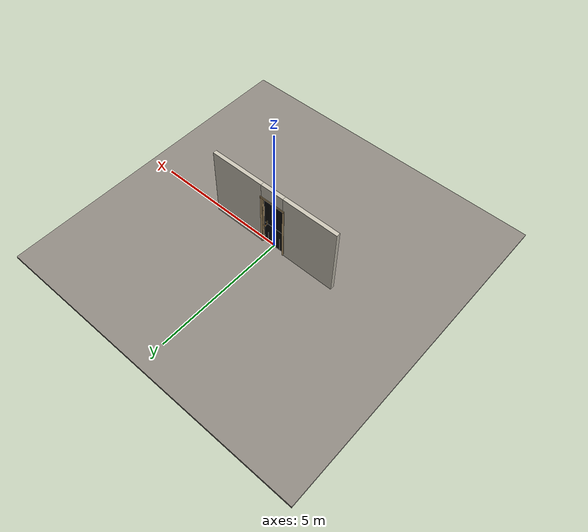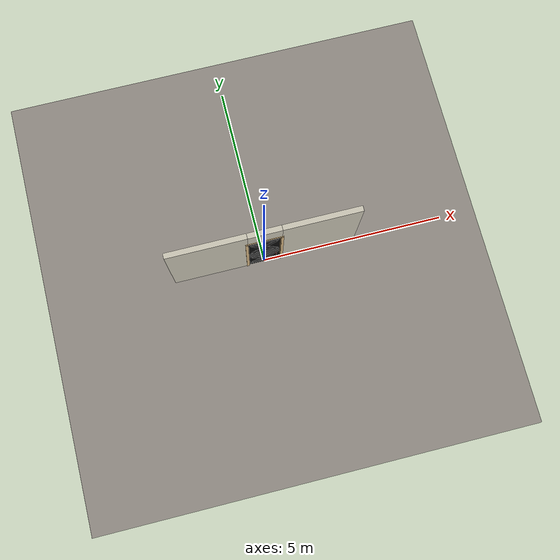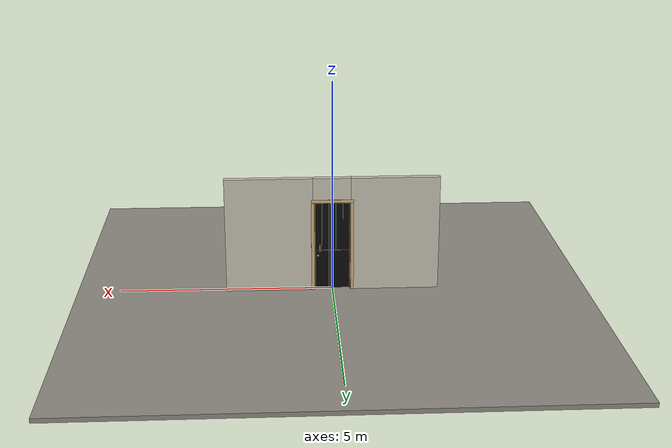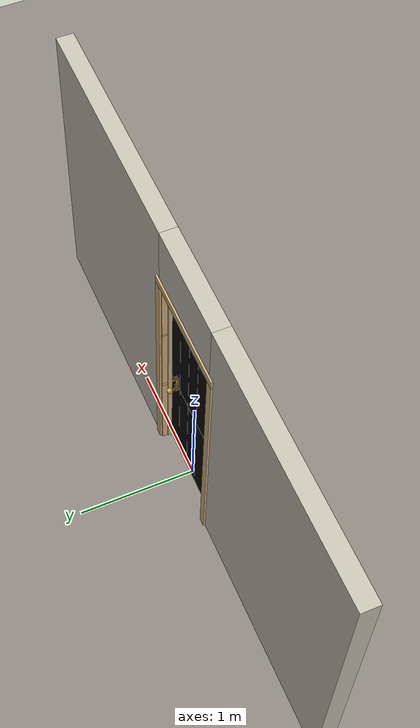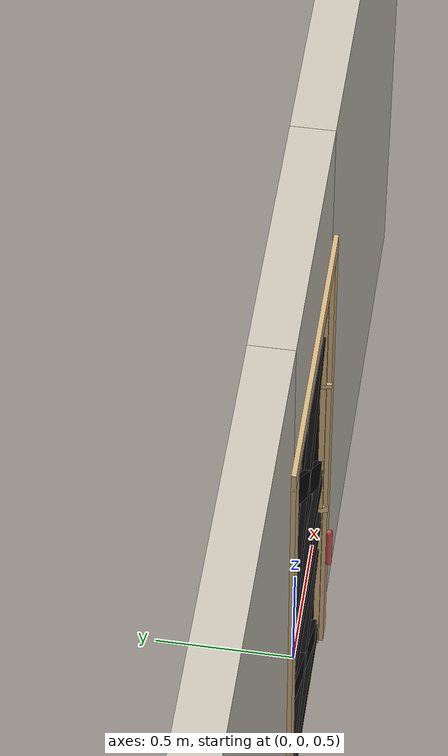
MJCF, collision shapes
<?xml version="1.0" ?>
<mujoco model="db0095_dutch_full">
  <compiler angle="radian" meshdir="../../hardware" texturedir="../../textures" autolimits="true" inertiafromgeom="false"/>
  <option timestep="0.002" integrator="implicitfast" cone="elliptic" impratio="10" noslip_iterations="3">
    <flag multiccd="enable"/>
  </option>
  <size memory="16M"/>
  <default>
    <geom condim="4" solref="0.005 1" solimp="0.95 0.99 0.001"/>
    <joint solreflimit="0.005 1" solimplimit="0.95 0.99 0.001"/>
    <tendon solreflimit="0.005 1"/>
    <equality solref="0.002 1"/>
  </default>
  <visual>
    <headlight ambient="0.4 0.4 0.4" diffuse="0.7 0.7 0.7" specular="0.2 0.2 0.2"/>
    <quality shadowsize="4096"/>
    <map znear="0.01" zfar="60"/>
  </visual>
  <asset>
    <mesh name="handleset_beb5526ad2" file="handleset_beb5526ad2.obj"/>
    <mesh name="hinge_2af0f4d6ca" file="hinge_2af0f4d6ca.obj"/>
    <mesh name="hinge_jamb_c0c0a62ada" file="hinge_jamb_c0c0a62ada.obj"/>
    <mesh name="knob_d1888f6f03" file="knob_d1888f6f03.obj"/>
    <material name="mat_floor" rgba="0.55 0.53 0.5 1" specular="0.2" shininess="0.15" reflectance="0"/>
    <material name="mat_wall" rgba="0.78 0.76 0.7 1" specular="0.2" shininess="0.1" reflectance="0"/>
    <material name="mat_leaf_lower" rgba="0.04 0.04 0.04 1" specular="0.2" shininess="0.44" reflectance="0"/>
    <material name="mat_leaf_lower_brace" rgba="0.036 0.036 0.036 1" specular="0.2" shininess="0.2" reflectance="0"/>
    <material name="mat_leaf_upper" rgba="0.04 0.04 0.04 1" specular="0.2" shininess="0.44" reflectance="0"/>
    <material name="mat_leaf_upper_brace" rgba="0.036 0.036 0.036 1" specular="0.2" shininess="0.2" reflectance="0"/>
    <material name="mat_op_bronze" rgba="0.3 0.22 0.15 1" specular="0.74" shininess="0.5" reflectance="0.36"/>
    <material name="mat_op_brass" rgba="0.85 0.66 0.3 1" specular="0.8" shininess="0.75" reflectance="0.4"/>
    <material name="mat_trim" rgba="0.85 0.66 0.3 1" specular="0.8" shininess="0.75" reflectance="0.4"/>
    <material name="mat_bolt" rgba="0.85 0.66 0.3 1" specular="0.8" shininess="0.75" reflectance="0.4"/>
    <material name="mat_joinbolt" rgba="0.85 0.66 0.3 1" specular="0.8" shininess="0.75" reflectance="0.4"/>
    <material name="mat_frame" rgba="0.82 0.7 0.5 1" specular="0.2" shininess="0.45" reflectance="0"/>
    <material name="mat_hinge" rgba="0.65 0.66 0.68 1" specular="0.74" shininess="0.5" reflectance="0.36"/>
    <texture name="skybox" type="skybox" builtin="gradient" rgb1="0.6 0.7 0.85" rgb2="0.9 0.92 0.95" width="256" height="256"/>
  </asset>
  <worldbody>
    <light name="sun" pos="1.5 -2.5 4" dir="-0.3 0.5 -0.8" directional="true" diffuse="0.8 0.8 0.8" specular="0.3 0.3 0.3" castshadow="true"/>
    <light name="fill" pos="-1.5 2.5 3" dir="0.3 -0.5 -0.7" directional="true" diffuse="0.35 0.35 0.4" castshadow="false"/>
    <camera name="robot_view" pos="0 -2.607312 1.812087" xyaxes="1 0 0 0 0.26963 0.962964" fovy="52"/>
    <camera name="far_view" pos="0 2.668312 1.812087" xyaxes="-1 0 0 0 -0.26963 0.962964" fovy="52"/>
    <camera name="iso" pos="2.004737 -2.185262 2.234138" xyaxes="0.741536 0.670913 0 -0.242917 0.268487 0.932151" fovy="46"/>
    <camera name="detail_handle" pos="0.4805 -0.882 1.06" xyaxes="0.97561 0.219512 0 -0.070934 0.315262 0.94635" fovy="38"/>
    <geom name="floor" type="box" size="6 6 0.05" pos="0 0 -0.05" material="mat_floor" group="0" contype="1" conaffinity="1" friction="0.8 0.005 0.0001" density="2400"/>
    <geom name="wall_left" type="box" size="1.03525 0.0725 1.3735" pos="-1.46475 0.0305 1.3735" material="mat_wall" group="0" contype="1" conaffinity="1" friction="0.6 0.005 0.0001" density="800"/>
    <geom name="wall_right" type="box" size="1.02025 0.0725 1.3735" pos="1.47975 0.0305 1.3735" material="mat_wall" group="0" contype="1" conaffinity="1" friction="0.6 0.005 0.0001" density="800"/>
    <geom name="wall_header" type="box" size="0.4445 0.0725 0.2755" pos="0.015 0.0305 2.4715" material="mat_wall" group="0" contype="1" conaffinity="1" friction="0.6 0.005 0.0001" density="800"/>
    <geom name="jamb_hinge" type="box" size="0.0095 0.0725 1.0735" pos="-0.42 0.0305 1.0735" material="mat_frame" group="0" contype="1" conaffinity="1" friction="0.6 0.005 0.0001" density="400"/>
    <geom name="strike_840_wall_n" type="box" size="0.0245 0.047575 0.0167" pos="0.435 0.055425 0.84" material="mat_frame" group="0" contype="1" conaffinity="1" friction="0.6 0.005 0.0001" density="400"/>
    <geom name="strike_840_wall_p" type="box" size="0.0245 0.008 0.0167" pos="0.435 -0.01585 0.84" material="mat_frame" group="0" contype="1" conaffinity="1" friction="0.6 0.005 0.0001" density="400"/>
    <geom name="strike_840_ramp" type="box" size="0.0245 0.020268 0.0167" pos="0.440408 -0.034645 0.84" quat="0.985179 0 0 0.171531" material="mat_frame" group="0" contype="1" conaffinity="1" friction="0.12 0.005 0.0001" density="400"/>
    <geom name="strike_840_back" type="box" size="0.01615 0.00785 0.0167" pos="0.44335 0 0.84" material="mat_frame" group="0" contype="1" conaffinity="1" friction="0.6 0.005 0.0001" density="400"/>
    <geom name="strike_1547_wall_n" type="box" size="0.0245 0.04775 0.01" pos="0.435 0.05525 1.547" material="mat_frame" group="0" contype="1" conaffinity="1" friction="0.6 0.005 0.0001" density="400"/>
    <geom name="strike_1547_wall_p" type="box" size="0.0245 0.008 0.01" pos="0.435 -0.0155 1.547" material="mat_frame" group="0" contype="1" conaffinity="1" friction="0.6 0.005 0.0001" density="400"/>
    <geom name="strike_1547_ramp" type="box" size="0.0245 0.019412 0.01" pos="0.437296 -0.039595 1.547" quat="0.997916 0 0 0.064529" material="mat_frame" group="0" contype="1" conaffinity="1" friction="0.12 0.005 0.0001" density="400"/>
    <geom name="strike_1547_ramp_n" type="box" size="0.0245 0.019412 0.01" pos="0.437296 0.027595 1.547" quat="0.997916 0 0 -0.064529" material="mat_frame" group="0" contype="1" conaffinity="1" friction="0.12 0.005 0.0001" density="400"/>
    <geom name="strike_1547_back" type="box" size="0.0205 0.0075 0.01" pos="0.439 0 1.547" material="mat_frame" group="0" contype="1" conaffinity="1" friction="0.6 0.005 0.0001" density="400"/>
    <geom name="jamb_strike_0" type="box" size="0.0245 0.0725 0.41165" pos="0.435 0.0305 0.41165" material="mat_frame" group="0" contype="1" conaffinity="1" friction="0.6 0.005 0.0001" density="400"/>
    <geom name="jamb_strike_1" type="box" size="0.0245 0.0725 0.34015" pos="0.435 0.0305 1.19685" material="mat_frame" group="0" contype="1" conaffinity="1" friction="0.6 0.005 0.0001" density="400"/>
    <geom name="jamb_strike_2" type="box" size="0.0245 0.0725 0.295" pos="0.435 0.0305 1.852" material="mat_frame" group="0" contype="1" conaffinity="1" friction="0.6 0.005 0.0001" density="400"/>
    <geom name="jamb_head" type="box" size="0.4445 0.0725 0.0095" pos="0.015 0.0305 2.1565" material="mat_frame" group="0" contype="1" conaffinity="1" friction="0.6 0.005 0.0001" density="400"/>
    <geom name="head_stud" type="box" size="0.4445 0.0725 0.015" pos="0.015 0.0305 2.181" material="mat_wall" group="0" contype="1" conaffinity="1" friction="0.6 0.005 0.0001" density="500"/>
    <geom name="stop_hinge" type="box" size="0.0055 0.016 1.0735" pos="-0.405 0.0385 1.0735" material="mat_frame" group="0" contype="1" conaffinity="1" friction="0.6 0.005 0.0001" density="400"/>
    <geom name="stop_strike" type="box" size="0.0055 0.016 1.0735" pos="0.405 0.0385 1.0735" material="mat_frame" group="0" contype="1" conaffinity="1" friction="0.6 0.005 0.0001" density="400"/>
    <geom name="stop_head" type="box" size="0.4105 0.016 0.0055" pos="0 0.0385 2.1415" material="mat_frame" group="0" contype="1" conaffinity="1" friction="0.6 0.005 0.0001" density="400"/>
    <geom name="casing_l_n" type="box" size="0.035 0.008 1.083" pos="-0.4595 -0.05 1.0735" material="mat_frame" group="2" contype="0" conaffinity="0" density="400"/>
    <geom name="casing_r_n" type="box" size="0.035 0.008 1.083" pos="0.4595 -0.05 1.0735" material="mat_frame" group="2" contype="0" conaffinity="0" density="400"/>
    <geom name="casing_h_n" type="box" size="0.4945 0.008 0.035" pos="0 -0.05 2.196" material="mat_frame" group="2" contype="0" conaffinity="0" density="400"/>
    <geom name="casing_l_p" type="box" size="0.035 0.008 1.083" pos="-0.4595 0.111 1.0735" material="mat_frame" group="2" contype="0" conaffinity="0" density="400"/>
    <geom name="casing_r_p" type="box" size="0.035 0.008 1.083" pos="0.4595 0.111 1.0735" material="mat_frame" group="2" contype="0" conaffinity="0" density="400"/>
    <geom name="casing_h_p" type="box" size="0.4945 0.008 0.035" pos="0 0.111 2.196" material="mat_frame" group="2" contype="0" conaffinity="0" density="400"/>
    <geom name="hinge_0_jamb" type="mesh" mesh="hinge_jamb_c0c0a62ada" pos="-0.4105 -0.029 0.262" material="mat_hinge" group="1" contype="0" conaffinity="0" density="7850"/>
    <geom name="hinge_1_jamb" type="mesh" mesh="hinge_jamb_c0c0a62ada" pos="-0.4105 -0.029 0.433333" material="mat_hinge" group="1" contype="0" conaffinity="0" density="7850"/>
    <geom name="hinge_2_jamb" type="mesh" mesh="hinge_jamb_c0c0a62ada" pos="-0.4105 -0.029 0.604667" material="mat_hinge" group="1" contype="0" conaffinity="0" density="7850"/>
    <geom name="hinge_3_jamb" type="mesh" mesh="hinge_jamb_c0c0a62ada" pos="-0.4105 -0.029 0.776" material="mat_hinge" group="1" contype="0" conaffinity="0" density="7850"/>
    <geom name="hinge_0_jamb_2" type="mesh" mesh="hinge_jamb_c0c0a62ada" pos="-0.4105 -0.029 1.214" material="mat_hinge" group="1" contype="0" conaffinity="0" density="7850"/>
    <geom name="hinge_1_jamb_2" type="mesh" mesh="hinge_jamb_c0c0a62ada" pos="-0.4105 -0.029 1.460667" material="mat_hinge" group="1" contype="0" conaffinity="0" density="7850"/>
    <geom name="hinge_2_jamb_2" type="mesh" mesh="hinge_jamb_c0c0a62ada" pos="-0.4105 -0.029 1.707333" material="mat_hinge" group="1" contype="0" conaffinity="0" density="7850"/>
    <geom name="hinge_3_jamb_2" type="mesh" mesh="hinge_jamb_c0c0a62ada" pos="-0.4105 -0.029 1.954" material="mat_hinge" group="1" contype="0" conaffinity="0" density="7850"/>
    <site name="approach_point" pos="0 -1.5 0" quat="1 0 0 0" size="0.05" rgba="0.2 0.9 0.2 0.5" group="4"/>
    <site name="goal_point" pos="0 1.5 0" quat="1 0 0 0" size="0.05" rgba="0.2 0.9 0.2 0.5" group="4"/>
    <site name="door_plane_center" pos="0 0 1.0735" quat="1 0 0 0" size="0.02" rgba="0.2 0.9 0.2 0.5" group="4"/>
    <body name="leaf_lower" pos="-0.4105 0 0">
      <inertial pos="0.44961 -0.033429 0.685411" mass="9.593127" quat="0.682896 -0.700377 -0.130895 -0.161216" diaginertia="0.177264653 1.313241593 1.476085697"/>
      <joint name="leaf_lower_hinge" type="hinge" axis="0 0 -1" pos="0.003 -0.029 0" limited="true" range="0 1.396263" damping="0.218374" frictionloss="0.39623" armature="0.02"/>
      <geom name="leaf_lower_slab" type="box" size="0.4065 0.022 0.472" pos="0.4095 0 0.484" material="mat_leaf_lower" group="0" contype="1" conaffinity="1" friction="0.4 0.005 0.0001" density="1"/>
      <geom name="leaf_lower_plank_gap_1" type="box" size="0.002 0.023 0.462" pos="0.1656 0 0.484" material="mat_leaf_lower_brace" group="1" contype="0" conaffinity="0" density="1"/>
      <geom name="leaf_lower_plank_gap_2" type="box" size="0.002 0.023 0.462" pos="0.3282 0 0.484" material="mat_leaf_lower_brace" group="1" contype="0" conaffinity="0" density="1"/>
      <geom name="leaf_lower_plank_gap_3" type="box" size="0.002 0.023 0.462" pos="0.4908 0 0.484" material="mat_leaf_lower_brace" group="1" contype="0" conaffinity="0" density="1"/>
      <geom name="leaf_lower_plank_gap_4" type="box" size="0.002 0.023 0.462" pos="0.6534 0 0.484" material="mat_leaf_lower_brace" group="1" contype="0" conaffinity="0" density="1"/>
      <geom name="leaf_lower_batten_13" type="box" size="0.3765 0.01 0.045" pos="0.4095 -0.032 0.132" material="mat_leaf_lower_brace" group="1" contype="0" conaffinity="0" density="1"/>
      <geom name="leaf_lower_batten_83" type="box" size="0.3765 0.01 0.045" pos="0.4095 -0.032 0.836" material="mat_leaf_lower_brace" group="1" contype="0" conaffinity="0" density="1"/>
      <geom name="leaf_lower_brace_z" type="box" size="0.404006 0.01 0.045" pos="0.4095 -0.032 0.484" quat="0.940295 0 -0.34036 0" material="mat_leaf_lower_brace" group="1" contype="0" conaffinity="0" density="1"/>
      <geom name="leaf_lower_brace_x" type="box" size="0.404006 0.01 0.045" pos="0.4095 -0.032 0.484" quat="0.940295 0 0.34036 0" material="mat_leaf_lower_brace" group="1" contype="0" conaffinity="0" density="1"/>
      <geom name="lower_handleset_n" type="mesh" mesh="handleset_beb5526ad2" pos="0.711 -0.022 0.78" quat="0.707107 0.707107 0 0" material="mat_op_bronze" group="1" contype="0" conaffinity="0" density="3000"/>
      <geom name="lower_handleset_col_n" type="capsule" size="0.011 0.09" pos="0.711 -0.082 0.78" material="mat_op_bronze" group="3" contype="1" conaffinity="1" rgba="0.8 0.3 0.3 0.25" friction="0.7 0.01 0.0001" density="3000"/>
      <geom name="lower_latch_bolt_faceplate" type="box" size="0.0006 0.01235 0.0267" pos="0.8154 0 0.84" material="mat_bolt" group="1" contype="0" conaffinity="0" density="8500"/>
      <geom name="join_keeper_leg_n" type="box" size="0.007 0.0025 0.013" pos="0.7075 0.035 0.93" quat="0.5 -0.5 0.5 0.5" material="mat_joinbolt" group="0" contype="1" conaffinity="1" friction="0.6 0.005 0.0001" density="7800"/>
      <geom name="join_keeper_leg_p" type="box" size="0.007 0.0025 0.013" pos="0.6845 0.035 0.93" quat="0.5 -0.5 0.5 0.5" material="mat_joinbolt" group="0" contype="1" conaffinity="1" friction="0.6 0.005 0.0001" density="7800"/>
      <geom name="join_keeper_bridge" type="box" size="0.007 0.014 0.0025" pos="0.696 0.0455 0.93" quat="0.5 -0.5 0.5 0.5" material="mat_joinbolt" group="0" contype="1" conaffinity="1" friction="0.6 0.005 0.0001" density="7800"/>
      <geom name="join_keeper_base" type="box" size="0.013 0.02 0.001" pos="0.696 0.023 0.93" quat="0.5 -0.5 0.5 0.5" material="mat_joinbolt" group="1" contype="0" conaffinity="0" density="7800"/>
      <geom name="hinge_0" type="mesh" mesh="hinge_2af0f4d6ca" pos="0 -0.029 0.262" material="mat_hinge" group="1" contype="0" conaffinity="0" density="7850"/>
      <geom name="hinge_1" type="mesh" mesh="hinge_2af0f4d6ca" pos="0 -0.029 0.433333" material="mat_hinge" group="1" contype="0" conaffinity="0" density="7850"/>
      <geom name="hinge_2" type="mesh" mesh="hinge_2af0f4d6ca" pos="0 -0.029 0.604667" material="mat_hinge" group="1" contype="0" conaffinity="0" density="7850"/>
      <geom name="hinge_3" type="mesh" mesh="hinge_2af0f4d6ca" pos="0 -0.029 0.776" material="mat_hinge" group="1" contype="0" conaffinity="0" density="7850"/>
      <site name="lower_handleset_grip_n" pos="0.711 -0.082 0.78" quat="1 0 0 0" size="0.012" rgba="0.2 0.9 0.2 0.5" group="4"/>
      <body name="lower_handle" pos="0.746 0 0.84">
        <inertial pos="0 0.052948 0" mass="0.60261" quat="0.5 0.5 0.5 0.5" diaginertia="0.000156736 0.000451151 0.000451151"/>
        <joint name="lower_handle_hinge" type="hinge" axis="0 -1 0" limited="true" range="0 0.87" damping="0.142525" frictionloss="0.038" stiffness="0.5" springref="-0.5" armature="0.01"/>
        <geom name="lower_handle_spindle" type="cylinder" size="0.006 0.03" pos="0 0 0" quat="0.707107 -0.707107 0 0" material="mat_op_brass" group="1" contype="0" conaffinity="0" density="7850"/>
        <geom name="lower_handle_knob_p" type="mesh" mesh="knob_d1888f6f03" pos="0 0.022 0" quat="-0.707107 0.707107 0 0" material="mat_op_brass" group="1" contype="0" conaffinity="0" density="3000"/>
        <geom name="lower_handle_knob_col_p" type="sphere" size="0.0243" pos="0 0.0685 0" material="mat_op_brass" group="0" contype="1" conaffinity="1" friction="0.9 0.01 0.0001" density="3000"/>
        <geom name="lower_handle_knob_neck_p" type="cylinder" size="0.011 0.012" pos="0 0.034 0" quat="0.707107 -0.707107 0 0" material="mat_op_brass" group="3" contype="1" conaffinity="1" rgba="0.8 0.3 0.3 0.25" friction="0.6 0.005 0.0001" density="3000"/>
        <site name="lower_handle_grip_p" pos="0 0.0685 0" quat="1 0 0 0" size="0.012" rgba="0.2 0.9 0.2 0.5" group="4"/>
      </body>
      <body name="lower_latch_bolt" pos="0.816 0 0.84">
        <inertial pos="-0.00865 0 0" mass="0.041419" quat="0.92388 -0.382683 0 0" diaginertia="0.000000798 0.000005598 0.000005598"/>
        <joint name="lower_latch_bolt_slide" type="slide" axis="-1 0 0" limited="true" range="0 0.0127" damping="2" frictionloss="0.3" stiffness="300" springref="-0.008333" armature="0.1"/>
        <geom name="lower_latch_bolt_capsule" type="capsule" size="0.00635 0.015" pos="-0.00865 0 0" quat="0.707107 0 0.707107 0" material="mat_bolt" group="0" contype="1" conaffinity="1" friction="0.2 0.005 0.0001" density="8500"/>
      </body>
    </body>
    <body name="leaf_upper" pos="-0.4105 0 0">
      <inertial pos="0.148469 -0.007221 1.491304" mass="11.607065" quat="-0.330622 0.296359 0.639138 0.627984" diaginertia="0.476765824 1.687386026 2.158257526"/>
      <joint name="leaf_upper_hinge" type="hinge" axis="0 0 -1" pos="0.003 -0.029 0" limited="true" range="0 1.396263" damping="0.218374" frictionloss="0.39623" armature="0.02"/>
      <geom name="leaf_upper_slab" type="box" size="0.4065 0.022 0.585" pos="0.4095 0 1.549" material="mat_leaf_upper" group="0" contype="1" conaffinity="1" friction="0.4 0.005 0.0001" density="1"/>
      <geom name="leaf_upper_plank_gap_1" type="box" size="0.002 0.023 0.575" pos="0.1656 0 1.549" material="mat_leaf_upper_brace" group="1" contype="0" conaffinity="0" density="1"/>
      <geom name="leaf_upper_plank_gap_2" type="box" size="0.002 0.023 0.575" pos="0.3282 0 1.549" material="mat_leaf_upper_brace" group="1" contype="0" conaffinity="0" density="1"/>
      <geom name="leaf_upper_plank_gap_3" type="box" size="0.002 0.023 0.575" pos="0.4908 0 1.549" material="mat_leaf_upper_brace" group="1" contype="0" conaffinity="0" density="1"/>
      <geom name="leaf_upper_plank_gap_4" type="box" size="0.002 0.023 0.575" pos="0.6534 0 1.549" material="mat_leaf_upper_brace" group="1" contype="0" conaffinity="0" density="1"/>
      <geom name="leaf_upper_batten_108" type="box" size="0.3765 0.01 0.045" pos="0.4095 -0.032 1.084" material="mat_leaf_upper_brace" group="1" contype="0" conaffinity="0" density="1"/>
      <geom name="leaf_upper_batten_201" type="box" size="0.3765 0.01 0.045" pos="0.4095 -0.032 2.014" material="mat_leaf_upper_brace" group="1" contype="0" conaffinity="0" density="1"/>
      <geom name="leaf_upper_brace_z" type="box" size="0.483316 0.01 0.045" pos="0.4095 -0.032 1.549" quat="0.909988 0 -0.414635 0" material="mat_leaf_upper_brace" group="1" contype="0" conaffinity="0" density="1"/>
      <geom name="leaf_upper_brace_x" type="box" size="0.483316 0.01 0.045" pos="0.4095 -0.032 1.549" quat="0.909988 0 0.414635 0" material="mat_leaf_upper_brace" group="1" contype="0" conaffinity="0" density="1"/>
      <geom name="upper_catch_faceplate" type="box" size="0.0006 0.012 0.02" pos="0.8154 0 1.547" material="mat_bolt" group="1" contype="0" conaffinity="0" density="8500"/>
      <geom name="join_bolt_plate" type="box" size="0.064 0.019 0.001" pos="0.696 0.023 1.036" quat="0.5 -0.5 0.5 0.5" material="mat_joinbolt" group="1" contype="0" conaffinity="0" density="7800"/>
      <geom name="join_bolt_guide_0_leg_n" type="box" size="0.006 0.002 0.0125" pos="0.707 0.0345 0.98" quat="0.5 -0.5 0.5 0.5" material="mat_joinbolt" group="1" contype="0" conaffinity="0" density="7800"/>
      <geom name="join_bolt_guide_0_leg_p" type="box" size="0.006 0.002 0.0125" pos="0.685 0.0345 0.98" quat="0.5 -0.5 0.5 0.5" material="mat_joinbolt" group="1" contype="0" conaffinity="0" density="7800"/>
      <geom name="join_bolt_guide_0_bridge" type="box" size="0.006 0.013 0.002" pos="0.696 0.045 0.98" quat="0.5 -0.5 0.5 0.5" material="mat_joinbolt" group="1" contype="0" conaffinity="0" density="7800"/>
      <geom name="join_bolt_guide_1_leg_n" type="box" size="0.006 0.002 0.0125" pos="0.707 0.0345 1.09" quat="0.5 -0.5 0.5 0.5" material="mat_joinbolt" group="1" contype="0" conaffinity="0" density="7800"/>
      <geom name="join_bolt_guide_1_leg_p" type="box" size="0.006 0.002 0.0125" pos="0.685 0.0345 1.09" quat="0.5 -0.5 0.5 0.5" material="mat_joinbolt" group="1" contype="0" conaffinity="0" density="7800"/>
      <geom name="join_bolt_guide_1_bridge" type="box" size="0.006 0.013 0.002" pos="0.696 0.045 1.09" quat="0.5 -0.5 0.5 0.5" material="mat_joinbolt" group="1" contype="0" conaffinity="0" density="7800"/>
      <geom name="hinge_0_2" type="mesh" mesh="hinge_2af0f4d6ca" pos="0 -0.029 1.214" material="mat_hinge" group="1" contype="0" conaffinity="0" density="7850"/>
      <geom name="hinge_1_2" type="mesh" mesh="hinge_2af0f4d6ca" pos="0 -0.029 1.460667" material="mat_hinge" group="1" contype="0" conaffinity="0" density="7850"/>
      <geom name="hinge_2_2" type="mesh" mesh="hinge_2af0f4d6ca" pos="0 -0.029 1.707333" material="mat_hinge" group="1" contype="0" conaffinity="0" density="7850"/>
      <geom name="hinge_3_2" type="mesh" mesh="hinge_2af0f4d6ca" pos="0 -0.029 1.954" material="mat_hinge" group="1" contype="0" conaffinity="0" density="7850"/>
      <body name="upper_catch" pos="0.816 0 1.547">
        <inertial pos="-0.013 0 0" mass="0.02884" quat="0 0 0.707107 0.707107" diaginertia="0.000000491 0.000002465 0.000002465"/>
        <joint name="upper_catch_slide" type="slide" axis="-1 0 0" limited="true" range="0 0.004" damping="2" frictionloss="0.3" stiffness="4000" springref="-0.00375" armature="0.1"/>
        <geom name="upper_catch_capsule" type="capsule" size="0.006 0.011" pos="-0.013 0 0" quat="0.707107 0 0.707107 0" material="mat_bolt" group="0" contype="1" conaffinity="1" friction="0.2 0.005 0.0001" density="8500"/>
      </body>
      <body name="join_bolt" pos="0.696 0.034 0.964">
        <inertial pos="0 0.00492 0.075264" mass="0.111784" quat="0.065075 0.704106 0.065075 0.704106" diaginertia="0.000009833 0.000100603 0.000108548"/>
        <joint name="join_bolt_slide" type="slide" axis="0 0 1" limited="true" range="0 0.05" damping="1" frictionloss="1" armature="0.1" ref="0.05"/>
        <geom name="join_bolt_rod" type="capsule" size="0.006 0.044" pos="0 0 0.066" quat="0 1 0 0" material="mat_joinbolt" group="0" contype="1" conaffinity="1" friction="0.6 0.005 0.0001" density="7850"/>
        <geom name="join_bolt_knob" type="capsule" size="0.005 0.01" pos="0 0.015 0.105" quat="0.707107 -0.707107 0 0" material="mat_joinbolt" group="0" contype="1" conaffinity="1" friction="0.6 0.005 0.0001" density="7850"/>
        <geom name="join_bolt_knob_end" type="sphere" size="0.00675" pos="0 0.03 0.105" material="mat_joinbolt" group="1" contype="0" conaffinity="0" density="7850"/>
        <site name="join_bolt_grip" pos="0 0.034 0.105" quat="1 0 0 0" size="0.012" rgba="0.2 0.9 0.2 0.5" group="4"/>
      </body>
    </body>
  </worldbody>
  <tendon>
    <fixed name="lower_latch_bolt_coupling" limited="true" range="0 10">
      <joint joint="lower_latch_bolt_slide" coef="1"/>
      <joint joint="lower_handle_hinge" coef="-0.039688"/>
    </fixed>
  </tendon>
  <sensor>
    <jointpos name="leaf_lower_hinge_pos" joint="leaf_lower_hinge"/>
    <jointvel name="leaf_lower_hinge_vel" joint="leaf_lower_hinge"/>
    <jointpos name="leaf_upper_hinge_pos" joint="leaf_upper_hinge"/>
    <jointvel name="leaf_upper_hinge_vel" joint="leaf_upper_hinge"/>
    <jointpos name="lower_handle_hinge_pos" joint="lower_handle_hinge"/>
    <jointvel name="lower_handle_hinge_vel" joint="lower_handle_hinge"/>
    <jointpos name="lower_latch_bolt_slide_pos" joint="lower_latch_bolt_slide"/>
    <jointvel name="lower_latch_bolt_slide_vel" joint="lower_latch_bolt_slide"/>
    <jointpos name="upper_catch_slide_pos" joint="upper_catch_slide"/>
    <jointvel name="upper_catch_slide_vel" joint="upper_catch_slide"/>
    <jointpos name="join_bolt_slide_pos" joint="join_bolt_slide"/>
    <jointvel name="join_bolt_slide_vel" joint="join_bolt_slide"/>
  </sensor>
</mujoco>
